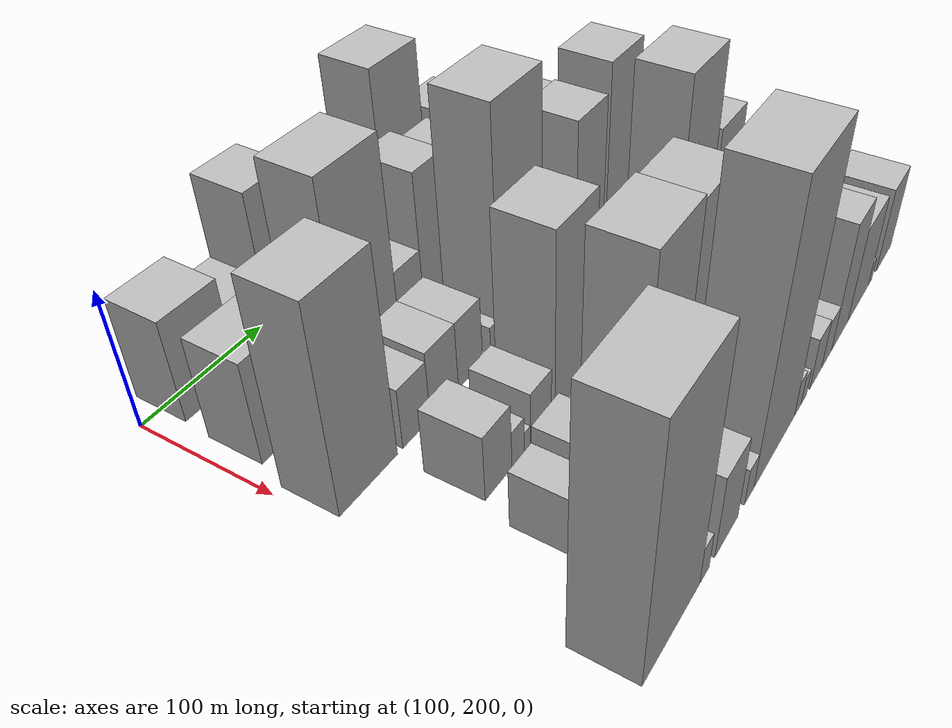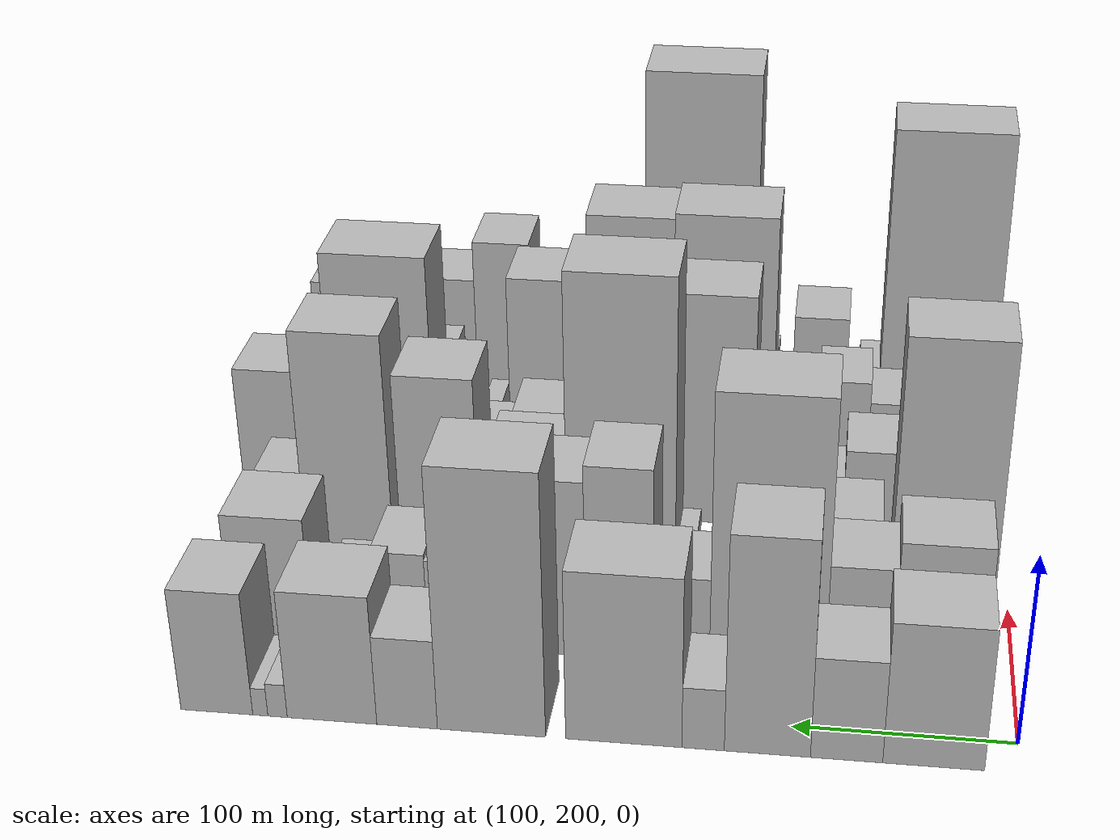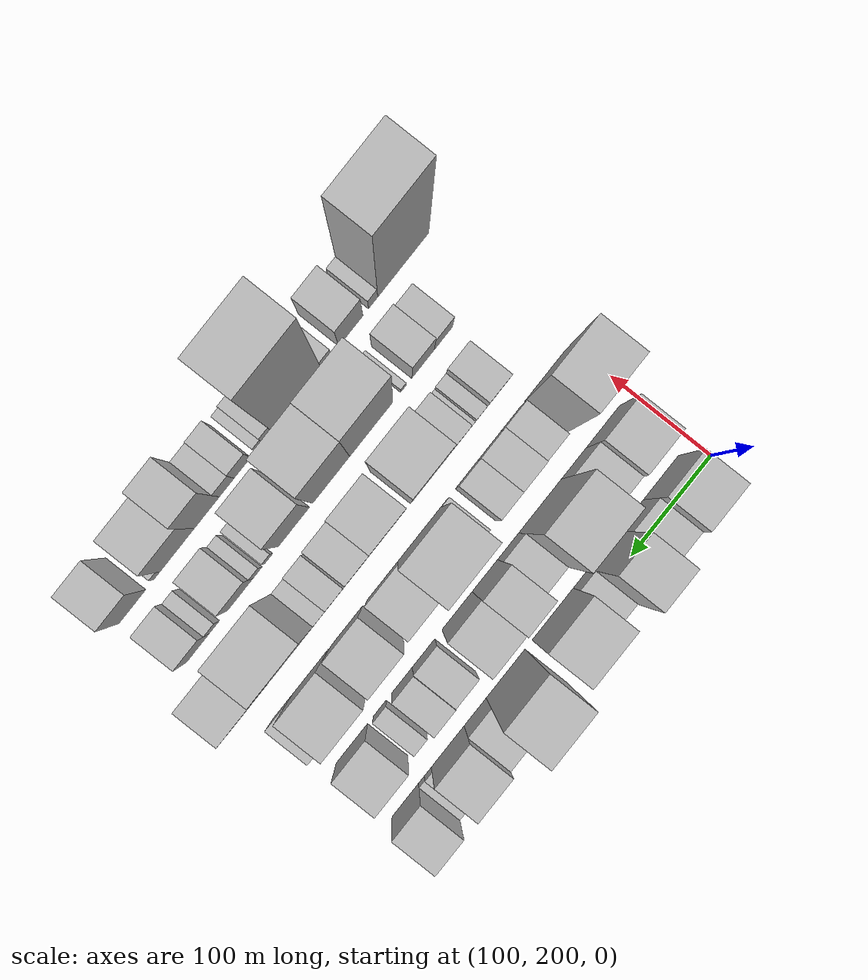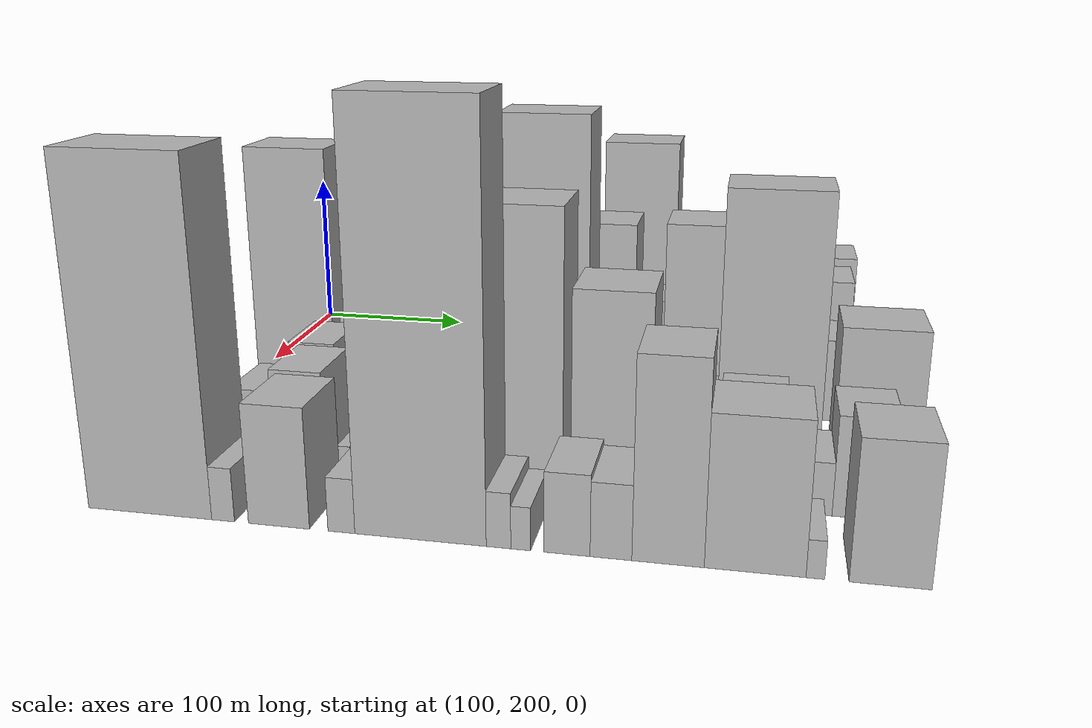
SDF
<sdf version="1.6">
 <world name="default">
  <model name="building_34">
   <static>1</static>
   <pose>100.0000 237.4932 0 0.000000 0.000000 0.000000</pose>
   <link name="link">
    <pose>0 0 37.50 0 0 0</pose>
    <collision name="collision"><geometry><box><size>40.0000 43.9191 75.0000</size></box></geometry></collision>
    <visual name="visual">
     <cast_shadows>0</cast_shadows>
     <geometry><box><size>40.0000 43.9191 75.0000</size></box></geometry>
     <material>
      <script>
       <uri>model://HANNAS_wall/materials/scripts</uri>
       <uri>model://HANNAS_wall/materials/textures</uri>
       <name>vrc/HANNAS_wall</name>
      </script>
     </material>
    </visual>
   </link>
  </model>
  <model name="building_35">
   <static>1</static>
   <pose>100.0000 275.1679 0 0.000000 0.000000 0.000000</pose>
   <link name="link">
    <pose>0 0 27.00 0 0 0</pose>
    <collision name="collision"><geometry><box><size>40.0000 31.4303 54.0000</size></box></geometry></collision>
    <visual name="visual">
     <cast_shadows>0</cast_shadows>
     <geometry><box><size>40.0000 31.4303 54.0000</size></box></geometry>
     <material>
      <script>
       <uri>model://HANNAS_wall/materials/scripts</uri>
       <uri>model://HANNAS_wall/materials/textures</uri>
       <name>vrc/HANNAS_wall</name>
      </script>
     </material>
    </visual>
   </link>
  </model>
  <model name="building_36">
   <static>1</static>
   <pose>100.0000 309.7557 0 0.000000 0.000000 0.000000</pose>
   <link name="link">
    <pose>0 0 57.00 0 0 0</pose>
    <collision name="collision"><geometry><box><size>40.0000 37.7454 114.0000</size></box></geometry></collision>
    <visual name="visual">
     <cast_shadows>0</cast_shadows>
     <geometry><box><size>40.0000 37.7454 114.0000</size></box></geometry>
     <material>
      <script>
       <uri>model://HANNAS_wall/materials/scripts</uri>
       <uri>model://HANNAS_wall/materials/textures</uri>
       <name>vrc/HANNAS_wall</name>
      </script>
     </material>
    </visual>
   </link>
  </model>
  <model name="building_37">
   <static>1</static>
   <pose>100.0000 337.9935 0 0.000000 0.000000 0.000000</pose>
   <link name="link">
    <pose>0 0 16.50 0 0 0</pose>
    <collision name="collision"><geometry><box><size>40.0000 18.7301 33.0000</size></box></geometry></collision>
    <visual name="visual">
     <cast_shadows>0</cast_shadows>
     <geometry><box><size>40.0000 18.7301 33.0000</size></box></geometry>
     <material>
      <script>
       <uri>model://HANNAS_wall/materials/scripts</uri>
       <uri>model://HANNAS_wall/materials/textures</uri>
       <name>vrc/HANNAS_wall</name>
      </script>
     </material>
    </visual>
   </link>
  </model>
  <model name="building_38">
   <static>1</static>
   <pose>100.0000 373.1869 0 0.000000 0.000000 0.000000</pose>
   <link name="link">
    <pose>0 0 45.00 0 0 0</pose>
    <collision name="collision"><geometry><box><size>40.0000 51.6567 90.0000</size></box></geometry></collision>
    <visual name="visual">
     <cast_shadows>0</cast_shadows>
     <geometry><box><size>40.0000 51.6567 90.0000</size></box></geometry>
     <material>
      <script>
       <uri>model://HANNAS_wall/materials/scripts</uri>
       <uri>model://HANNAS_wall/materials/textures</uri>
       <name>vrc/HANNAS_wall</name>
      </script>
     </material>
    </visual>
   </link>
  </model>
  <model name="building_39">
   <static>1</static>
   <pose>100.0000 432.4017 0 0.000000 0.000000 0.000000</pose>
   <link name="link">
    <pose>0 0 69.00 0 0 0</pose>
    <collision name="collision"><geometry><box><size>40.0000 48.7731 138.0000</size></box></geometry></collision>
    <visual name="visual">
     <cast_shadows>0</cast_shadows>
     <geometry><box><size>40.0000 48.7731 138.0000</size></box></geometry>
     <material>
      <script>
       <uri>model://HANNAS_wall/materials/scripts</uri>
       <uri>model://HANNAS_wall/materials/textures</uri>
       <name>vrc/HANNAS_wall</name>
      </script>
     </material>
    </visual>
   </link>
  </model>
  <model name="building_40">
   <static>1</static>
   <pose>100.0000 470.5657 0 0.000000 0.000000 0.000000</pose>
   <link name="link">
    <pose>0 0 24.00 0 0 0</pose>
    <collision name="collision"><geometry><box><size>40.0000 27.5548 48.0000</size></box></geometry></collision>
    <visual name="visual">
     <cast_shadows>0</cast_shadows>
     <geometry><box><size>40.0000 27.5548 48.0000</size></box></geometry>
     <material>
      <script>
       <uri>model://HANNAS_wall/materials/scripts</uri>
       <uri>model://HANNAS_wall/materials/textures</uri>
       <name>vrc/HANNAS_wall</name>
      </script>
     </material>
    </visual>
   </link>
  </model>
  <model name="building_41">
   <static>1</static>
   <pose>100.0000 504.8800 0 0.000000 0.000000 0.000000</pose>
   <link name="link">
    <pose>0 0 34.50 0 0 0</pose>
    <collision name="collision"><geometry><box><size>40.0000 41.0738 69.0000</size></box></geometry></collision>
    <visual name="visual">
     <cast_shadows>0</cast_shadows>
     <geometry><box><size>40.0000 41.0738 69.0000</size></box></geometry>
     <material>
      <script>
       <uri>model://HANNAS_wall/materials/scripts</uri>
       <uri>model://HANNAS_wall/materials/textures</uri>
       <name>vrc/HANNAS_wall</name>
      </script>
     </material>
    </visual>
   </link>
  </model>
  <model name="building_42">
   <static>1</static>
   <pose>100.0000 529.8861 0 0.000000 0.000000 0.000000</pose>
   <link name="link">
    <pose>0 0 9.00 0 0 0</pose>
    <collision name="collision"><geometry><box><size>40.0000 8.9385 18.0000</size></box></geometry></collision>
    <visual name="visual">
     <cast_shadows>0</cast_shadows>
     <geometry><box><size>40.0000 8.9385 18.0000</size></box></geometry>
     <material>
      <script>
       <uri>model://HANNAS_wall/materials/scripts</uri>
       <uri>model://HANNAS_wall/materials/textures</uri>
       <name>vrc/HANNAS_wall</name>
      </script>
     </material>
    </visual>
   </link>
  </model>
  <model name="building_43">
   <static>1</static>
   <pose>100.0000 537.8323 0 0.000000 0.000000 0.000000</pose>
   <link name="link">
    <pose>0 0 7.50 0 0 0</pose>
    <collision name="collision"><geometry><box><size>40.0000 6.9539 15.0000</size></box></geometry></collision>
    <visual name="visual">
     <cast_shadows>0</cast_shadows>
     <geometry><box><size>40.0000 6.9539 15.0000</size></box></geometry>
     <material>
      <script>
       <uri>model://HANNAS_wall/materials/scripts</uri>
       <uri>model://HANNAS_wall/materials/textures</uri>
       <name>vrc/HANNAS_wall</name>
      </script>
     </material>
    </visual>
   </link>
  </model>
  <model name="building_44">
   <static>1</static>
   <pose>100.0000 557.9653 0 0.000000 0.000000 0.000000</pose>
   <link name="link">
    <pose>0 0 33.00 0 0 0</pose>
    <collision name="collision"><geometry><box><size>40.0000 33.3122 66.0000</size></box></geometry></collision>
    <visual name="visual">
     <cast_shadows>0</cast_shadows>
     <geometry><box><size>40.0000 33.3122 66.0000</size></box></geometry>
     <material>
      <script>
       <uri>model://HANNAS_wall/materials/scripts</uri>
       <uri>model://HANNAS_wall/materials/textures</uri>
       <name>vrc/HANNAS_wall</name>
      </script>
     </material>
    </visual>
   </link>
  </model>
  <model name="building_94">
   <static>1</static>
   <pose>160.0000 234.5691 0 0.000000 0.000000 0.000000</pose>
   <link name="link">
    <pose>0 0 37.50 0 0 0</pose>
    <collision name="collision"><geometry><box><size>40.0000 42.1190 75.0000</size></box></geometry></collision>
    <visual name="visual">
     <cast_shadows>0</cast_shadows>
     <geometry><box><size>40.0000 42.1190 75.0000</size></box></geometry>
     <material>
      <script>
       <uri>model://HANNAS_wall/materials/scripts</uri>
       <uri>model://HANNAS_wall/materials/textures</uri>
       <name>vrc/HANNAS_wall</name>
      </script>
     </material>
    </visual>
   </link>
  </model>
  <model name="building_95">
   <static>1</static>
   <pose>160.0000 271.0334 0 0.000000 0.000000 0.000000</pose>
   <link name="link">
    <pose>0 0 30.00 0 0 0</pose>
    <collision name="collision"><geometry><box><size>40.0000 30.8096 60.0000</size></box></geometry></collision>
    <visual name="visual">
     <cast_shadows>0</cast_shadows>
     <geometry><box><size>40.0000 30.8096 60.0000</size></box></geometry>
     <material>
      <script>
       <uri>model://HANNAS_wall/materials/scripts</uri>
       <uri>model://HANNAS_wall/materials/textures</uri>
       <name>vrc/HANNAS_wall</name>
      </script>
     </material>
    </visual>
   </link>
  </model>
  <model name="building_96">
   <static>1</static>
   <pose>160.0000 313.3456 0 0.000000 0.000000 0.000000</pose>
   <link name="link">
    <pose>0 0 73.50 0 0 0</pose>
    <collision name="collision"><geometry><box><size>40.0000 53.8146 147.0000</size></box></geometry></collision>
    <visual name="visual">
     <cast_shadows>0</cast_shadows>
     <geometry><box><size>40.0000 53.8146 147.0000</size></box></geometry>
     <material>
      <script>
       <uri>model://HANNAS_wall/materials/scripts</uri>
       <uri>model://HANNAS_wall/materials/textures</uri>
       <name>vrc/HANNAS_wall</name>
      </script>
     </material>
    </visual>
   </link>
  </model>
  <model name="building_97">
   <static>1</static>
   <pose>160.0000 353.4781 0 0.000000 0.000000 0.000000</pose>
   <link name="link">
    <pose>0 0 24.00 0 0 0</pose>
    <collision name="collision"><geometry><box><size>40.0000 26.4505 48.0000</size></box></geometry></collision>
    <visual name="visual">
     <cast_shadows>0</cast_shadows>
     <geometry><box><size>40.0000 26.4505 48.0000</size></box></geometry>
     <material>
      <script>
       <uri>model://HANNAS_wall/materials/scripts</uri>
       <uri>model://HANNAS_wall/materials/textures</uri>
       <name>vrc/HANNAS_wall</name>
      </script>
     </material>
    </visual>
   </link>
  </model>
  <model name="building_98">
   <static>1</static>
   <pose>160.0000 382.6065 0 0.000000 0.000000 0.000000</pose>
   <link name="link">
    <pose>0 0 52.50 0 0 0</pose>
    <collision name="collision"><geometry><box><size>40.0000 31.8062 105.0000</size></box></geometry></collision>
    <visual name="visual">
     <cast_shadows>0</cast_shadows>
     <geometry><box><size>40.0000 31.8062 105.0000</size></box></geometry>
     <material>
      <script>
       <uri>model://HANNAS_wall/materials/scripts</uri>
       <uri>model://HANNAS_wall/materials/textures</uri>
       <name>vrc/HANNAS_wall</name>
      </script>
     </material>
    </visual>
   </link>
  </model>
  <model name="building_99">
   <static>1</static>
   <pose>160.0000 417.4485 0 0.000000 0.000000 0.000000</pose>
   <link name="link">
    <pose>0 0 48.00 0 0 0</pose>
    <collision name="collision"><geometry><box><size>40.0000 37.8778 96.0000</size></box></geometry></collision>
    <visual name="visual">
     <cast_shadows>0</cast_shadows>
     <geometry><box><size>40.0000 37.8778 96.0000</size></box></geometry>
     <material>
      <script>
       <uri>model://HANNAS_wall/materials/scripts</uri>
       <uri>model://HANNAS_wall/materials/textures</uri>
       <name>vrc/HANNAS_wall</name>
      </script>
     </material>
    </visual>
   </link>
  </model>
  <model name="building_100">
   <static>1</static>
   <pose>160.0000 459.3921 0 0.000000 0.000000 0.000000</pose>
   <link name="link">
    <pose>0 0 24.00 0 0 0</pose>
    <collision name="collision"><geometry><box><size>40.0000 28.0094 48.0000</size></box></geometry></collision>
    <visual name="visual">
     <cast_shadows>0</cast_shadows>
     <geometry><box><size>40.0000 28.0094 48.0000</size></box></geometry>
     <material>
      <script>
       <uri>model://HANNAS_wall/materials/scripts</uri>
       <uri>model://HANNAS_wall/materials/textures</uri>
       <name>vrc/HANNAS_wall</name>
      </script>
     </material>
    </visual>
   </link>
  </model>
  <model name="building_101">
   <static>1</static>
   <pose>160.0000 486.3158 0 0.000000 0.000000 0.000000</pose>
   <link name="link">
    <pose>0 0 25.50 0 0 0</pose>
    <collision name="collision"><geometry><box><size>40.0000 25.8382 51.0000</size></box></geometry></collision>
    <visual name="visual">
     <cast_shadows>0</cast_shadows>
     <geometry><box><size>40.0000 25.8382 51.0000</size></box></geometry>
     <material>
      <script>
       <uri>model://HANNAS_wall/materials/scripts</uri>
       <uri>model://HANNAS_wall/materials/textures</uri>
       <name>vrc/HANNAS_wall</name>
      </script>
     </material>
    </visual>
   </link>
  </model>
  <model name="building_102">
   <static>1</static>
   <pose>160.0000 514.3833 0 0.000000 0.000000 0.000000</pose>
   <link name="link">
    <pose>0 0 15.00 0 0 0</pose>
    <collision name="collision"><geometry><box><size>40.0000 16.2968 30.0000</size></box></geometry></collision>
    <visual name="visual">
     <cast_shadows>0</cast_shadows>
     <geometry><box><size>40.0000 16.2968 30.0000</size></box></geometry>
     <material>
      <script>
       <uri>model://HANNAS_wall/materials/scripts</uri>
       <uri>model://HANNAS_wall/materials/textures</uri>
       <name>vrc/HANNAS_wall</name>
      </script>
     </material>
    </visual>
   </link>
  </model>
  <model name="building_103">
   <static>1</static>
   <pose>160.0000 549.2202 0 0.000000 0.000000 0.000000</pose>
   <link name="link">
    <pose>0 0 33.00 0 0 0</pose>
    <collision name="collision"><geometry><box><size>40.0000 39.3769 66.0000</size></box></geometry></collision>
    <visual name="visual">
     <cast_shadows>0</cast_shadows>
     <geometry><box><size>40.0000 39.3769 66.0000</size></box></geometry>
     <material>
      <script>
       <uri>model://HANNAS_wall/materials/scripts</uri>
       <uri>model://HANNAS_wall/materials/textures</uri>
       <name>vrc/HANNAS_wall</name>
      </script>
     </material>
    </visual>
   </link>
  </model>
  <model name="building_150">
   <static>1</static>
   <pose>220.0000 231.9948 0 0.000000 0.000000 0.000000</pose>
   <link name="link">
    <pose>0 0 73.50 0 0 0</pose>
    <collision name="collision"><geometry><box><size>40.0000 50.7043 147.0000</size></box></geometry></collision>
    <visual name="visual">
     <cast_shadows>0</cast_shadows>
     <geometry><box><size>40.0000 50.7043 147.0000</size></box></geometry>
     <material>
      <script>
       <uri>model://HANNAS_wall/materials/scripts</uri>
       <uri>model://HANNAS_wall/materials/textures</uri>
       <name>vrc/HANNAS_wall</name>
      </script>
     </material>
    </visual>
   </link>
  </model>
  <model name="building_151">
   <static>1</static>
   <pose>220.0000 275.5493 0 0.000000 0.000000 0.000000</pose>
   <link name="link">
    <pose>0 0 22.50 0 0 0</pose>
    <collision name="collision"><geometry><box><size>40.0000 26.4049 45.0000</size></box></geometry></collision>
    <visual name="visual">
     <cast_shadows>0</cast_shadows>
     <geometry><box><size>40.0000 26.4049 45.0000</size></box></geometry>
     <material>
      <script>
       <uri>model://HANNAS_wall/materials/scripts</uri>
       <uri>model://HANNAS_wall/materials/textures</uri>
       <name>vrc/HANNAS_wall</name>
      </script>
     </material>
    </visual>
   </link>
  </model>
  <model name="building_152">
   <static>1</static>
   <pose>220.0000 303.2090 0 0.000000 0.000000 0.000000</pose>
   <link name="link">
    <pose>0 0 25.50 0 0 0</pose>
    <collision name="collision"><geometry><box><size>40.0000 28.9145 51.0000</size></box></geometry></collision>
    <visual name="visual">
     <cast_shadows>0</cast_shadows>
     <geometry><box><size>40.0000 28.9145 51.0000</size></box></geometry>
     <material>
      <script>
       <uri>model://HANNAS_wall/materials/scripts</uri>
       <uri>model://HANNAS_wall/materials/textures</uri>
       <name>vrc/HANNAS_wall</name>
      </script>
     </material>
    </visual>
   </link>
  </model>
  <model name="building_153">
   <static>1</static>
   <pose>220.0000 330.7737 0 0.000000 0.000000 0.000000</pose>
   <link name="link">
    <pose>0 0 25.50 0 0 0</pose>
    <collision name="collision"><geometry><box><size>40.0000 26.2148 51.0000</size></box></geometry></collision>
    <visual name="visual">
     <cast_shadows>0</cast_shadows>
     <geometry><box><size>40.0000 26.2148 51.0000</size></box></geometry>
     <material>
      <script>
       <uri>model://HANNAS_wall/materials/scripts</uri>
       <uri>model://HANNAS_wall/materials/textures</uri>
       <name>vrc/HANNAS_wall</name>
      </script>
     </material>
    </visual>
   </link>
  </model>
  <model name="building_154">
   <static>1</static>
   <pose>220.0000 357.5313 0 0.000000 0.000000 0.000000</pose>
   <link name="link">
    <pose>0 0 10.50 0 0 0</pose>
    <collision name="collision"><geometry><box><size>40.0000 9.3004 21.0000</size></box></geometry></collision>
    <visual name="visual">
     <cast_shadows>0</cast_shadows>
     <geometry><box><size>40.0000 9.3004 21.0000</size></box></geometry>
     <material>
      <script>
       <uri>model://HANNAS_wall/materials/scripts</uri>
       <uri>model://HANNAS_wall/materials/textures</uri>
       <name>vrc/HANNAS_wall</name>
      </script>
     </material>
    </visual>
   </link>
  </model>
  <model name="building_155">
   <static>1</static>
   <pose>220.0000 388.9571 0 0.000000 0.000000 0.000000</pose>
   <link name="link">
    <pose>0 0 85.50 0 0 0</pose>
    <collision name="collision"><geometry><box><size>40.0000 53.5513 171.0000</size></box></geometry></collision>
    <visual name="visual">
     <cast_shadows>0</cast_shadows>
     <geometry><box><size>40.0000 53.5513 171.0000</size></box></geometry>
     <material>
      <script>
       <uri>model://HANNAS_wall/materials/scripts</uri>
       <uri>model://HANNAS_wall/materials/textures</uri>
       <name>vrc/HANNAS_wall</name>
      </script>
     </material>
    </visual>
   </link>
  </model>
  <model name="building_156">
   <static>1</static>
   <pose>220.0000 435.1000 0 0.000000 0.000000 0.000000</pose>
   <link name="link">
    <pose>0 0 36.00 0 0 0</pose>
    <collision name="collision"><geometry><box><size>40.0000 38.7345 72.0000</size></box></geometry></collision>
    <visual name="visual">
     <cast_shadows>0</cast_shadows>
     <geometry><box><size>40.0000 38.7345 72.0000</size></box></geometry>
     <material>
      <script>
       <uri>model://HANNAS_wall/materials/scripts</uri>
       <uri>model://HANNAS_wall/materials/textures</uri>
       <name>vrc/HANNAS_wall</name>
      </script>
     </material>
    </visual>
   </link>
  </model>
  <model name="building_157">
   <static>1</static>
   <pose>220.0000 479.2156 0 0.000000 0.000000 0.000000</pose>
   <link name="link">
    <pose>0 0 55.50 0 0 0</pose>
    <collision name="collision"><geometry><box><size>40.0000 39.4967 111.0000</size></box></geometry></collision>
    <visual name="visual">
     <cast_shadows>0</cast_shadows>
     <geometry><box><size>40.0000 39.4967 111.0000</size></box></geometry>
     <material>
      <script>
       <uri>model://HANNAS_wall/materials/scripts</uri>
       <uri>model://HANNAS_wall/materials/textures</uri>
       <name>vrc/HANNAS_wall</name>
      </script>
     </material>
    </visual>
   </link>
  </model>
  <model name="building_158">
   <static>1</static>
   <pose>220.0000 525.3348 0 0.000000 0.000000 0.000000</pose>
   <link name="link">
    <pose>0 0 66.00 0 0 0</pose>
    <collision name="collision"><geometry><box><size>40.0000 44.7418 132.0000</size></box></geometry></collision>
    <visual name="visual">
     <cast_shadows>0</cast_shadows>
     <geometry><box><size>40.0000 44.7418 132.0000</size></box></geometry>
     <material>
      <script>
       <uri>model://HANNAS_wall/materials/scripts</uri>
       <uri>model://HANNAS_wall/materials/textures</uri>
       <name>vrc/HANNAS_wall</name>
      </script>
     </material>
    </visual>
   </link>
  </model>
  <model name="building_159">
   <static>1</static>
   <pose>220.0000 560.5594 0 0.000000 0.000000 0.000000</pose>
   <link name="link">
    <pose>0 0 24.00 0 0 0</pose>
    <collision name="collision"><geometry><box><size>40.0000 25.7073 48.0000</size></box></geometry></collision>
    <visual name="visual">
     <cast_shadows>0</cast_shadows>
     <geometry><box><size>40.0000 25.7073 48.0000</size></box></geometry>
     <material>
      <script>
       <uri>model://HANNAS_wall/materials/scripts</uri>
       <uri>model://HANNAS_wall/materials/textures</uri>
       <name>vrc/HANNAS_wall</name>
      </script>
     </material>
    </visual>
   </link>
  </model>
  <model name="building_200">
   <static>1</static>
   <pose>280.0000 268.0484 0 0.000000 0.000000 0.000000</pose>
   <link name="link">
    <pose>0 0 24.00 0 0 0</pose>
    <collision name="collision"><geometry><box><size>40.0000 26.8326 48.0000</size></box></geometry></collision>
    <visual name="visual">
     <cast_shadows>0</cast_shadows>
     <geometry><box><size>40.0000 26.8326 48.0000</size></box></geometry>
     <material>
      <script>
       <uri>model://HANNAS_wall/materials/scripts</uri>
       <uri>model://HANNAS_wall/materials/textures</uri>
       <name>vrc/HANNAS_wall</name>
      </script>
     </material>
    </visual>
   </link>
  </model>
  <model name="building_201">
   <static>1</static>
   <pose>280.0000 288.0906 0 0.000000 0.000000 0.000000</pose>
   <link name="link">
    <pose>0 0 13.50 0 0 0</pose>
    <collision name="collision"><geometry><box><size>40.0000 13.2517 27.0000</size></box></geometry></collision>
    <visual name="visual">
     <cast_shadows>0</cast_shadows>
     <geometry><box><size>40.0000 13.2517 27.0000</size></box></geometry>
     <material>
      <script>
       <uri>model://HANNAS_wall/materials/scripts</uri>
       <uri>model://HANNAS_wall/materials/textures</uri>
       <name>vrc/HANNAS_wall</name>
      </script>
     </material>
    </visual>
   </link>
  </model>
  <model name="building_202">
   <static>1</static>
   <pose>280.0000 298.0495 0 0.000000 0.000000 0.000000</pose>
   <link name="link">
    <pose>0 0 7.50 0 0 0</pose>
    <collision name="collision"><geometry><box><size>40.0000 6.6662 15.0000</size></box></geometry></collision>
    <visual name="visual">
     <cast_shadows>0</cast_shadows>
     <geometry><box><size>40.0000 6.6662 15.0000</size></box></geometry>
     <material>
      <script>
       <uri>model://HANNAS_wall/materials/scripts</uri>
       <uri>model://HANNAS_wall/materials/textures</uri>
       <name>vrc/HANNAS_wall</name>
      </script>
     </material>
    </visual>
   </link>
  </model>
  <model name="building_203">
   <static>1</static>
   <pose>280.0000 312.9044 0 0.000000 0.000000 0.000000</pose>
   <link name="link">
    <pose>0 0 19.50 0 0 0</pose>
    <collision name="collision"><geometry><box><size>40.0000 23.0436 39.0000</size></box></geometry></collision>
    <visual name="visual">
     <cast_shadows>0</cast_shadows>
     <geometry><box><size>40.0000 23.0436 39.0000</size></box></geometry>
     <material>
      <script>
       <uri>model://HANNAS_wall/materials/scripts</uri>
       <uri>model://HANNAS_wall/materials/textures</uri>
       <name>vrc/HANNAS_wall</name>
      </script>
     </material>
    </visual>
   </link>
  </model>
  <model name="building_204">
   <static>1</static>
   <pose>280.0000 351.5070 0 0.000000 0.000000 0.000000</pose>
   <link name="link">
    <pose>0 0 66.00 0 0 0</pose>
    <collision name="collision"><geometry><box><size>40.0000 46.1616 132.0000</size></box></geometry></collision>
    <visual name="visual">
     <cast_shadows>0</cast_shadows>
     <geometry><box><size>40.0000 46.1616 132.0000</size></box></geometry>
     <material>
      <script>
       <uri>model://HANNAS_wall/materials/scripts</uri>
       <uri>model://HANNAS_wall/materials/textures</uri>
       <name>vrc/HANNAS_wall</name>
      </script>
     </material>
    </visual>
   </link>
  </model>
  <model name="building_205">
   <static>1</static>
   <pose>280.0000 402.1672 0 0.000000 0.000000 0.000000</pose>
   <link name="link">
    <pose>0 0 36.00 0 0 0</pose>
    <collision name="collision"><geometry><box><size>40.0000 43.1589 72.0000</size></box></geometry></collision>
    <visual name="visual">
     <cast_shadows>0</cast_shadows>
     <geometry><box><size>40.0000 43.1589 72.0000</size></box></geometry>
     <material>
      <script>
       <uri>model://HANNAS_wall/materials/scripts</uri>
       <uri>model://HANNAS_wall/materials/textures</uri>
       <name>vrc/HANNAS_wall</name>
      </script>
     </material>
    </visual>
   </link>
  </model>
  <model name="building_206">
   <static>1</static>
   <pose>280.0000 438.3477 0 0.000000 0.000000 0.000000</pose>
   <link name="link">
    <pose>0 0 28.50 0 0 0</pose>
    <collision name="collision"><geometry><box><size>40.0000 29.2020 57.0000</size></box></geometry></collision>
    <visual name="visual">
     <cast_shadows>0</cast_shadows>
     <geometry><box><size>40.0000 29.2020 57.0000</size></box></geometry>
     <material>
      <script>
       <uri>model://HANNAS_wall/materials/scripts</uri>
       <uri>model://HANNAS_wall/materials/textures</uri>
       <name>vrc/HANNAS_wall</name>
      </script>
     </material>
    </visual>
   </link>
  </model>
  <model name="building_207">
   <static>1</static>
   <pose>280.0000 466.8706 0 0.000000 0.000000 0.000000</pose>
   <link name="link">
    <pose>0 0 21.00 0 0 0</pose>
    <collision name="collision"><geometry><box><size>40.0000 21.8439 42.0000</size></box></geometry></collision>
    <visual name="visual">
     <cast_shadows>0</cast_shadows>
     <geometry><box><size>40.0000 21.8439 42.0000</size></box></geometry>
     <material>
      <script>
       <uri>model://HANNAS_wall/materials/scripts</uri>
       <uri>model://HANNAS_wall/materials/textures</uri>
       <name>vrc/HANNAS_wall</name>
      </script>
     </material>
    </visual>
   </link>
  </model>
  <model name="building_208">
   <static>1</static>
   <pose>280.0000 485.6192 0 0.000000 0.000000 0.000000</pose>
   <link name="link">
    <pose>0 0 15.00 0 0 0</pose>
    <collision name="collision"><geometry><box><size>40.0000 15.6533 30.0000</size></box></geometry></collision>
    <visual name="visual">
     <cast_shadows>0</cast_shadows>
     <geometry><box><size>40.0000 15.6533 30.0000</size></box></geometry>
     <material>
      <script>
       <uri>model://HANNAS_wall/materials/scripts</uri>
       <uri>model://HANNAS_wall/materials/textures</uri>
       <name>vrc/HANNAS_wall</name>
      </script>
     </material>
    </visual>
   </link>
  </model>
  <model name="building_209">
   <static>1</static>
   <pose>280.0000 520.3911 0 0.000000 0.000000 0.000000</pose>
   <link name="link">
    <pose>0 0 72.00 0 0 0</pose>
    <collision name="collision"><geometry><box><size>40.0000 53.8904 144.0000</size></box></geometry></collision>
    <visual name="visual">
     <cast_shadows>0</cast_shadows>
     <geometry><box><size>40.0000 53.8904 144.0000</size></box></geometry>
     <material>
      <script>
       <uri>model://HANNAS_wall/materials/scripts</uri>
       <uri>model://HANNAS_wall/materials/textures</uri>
       <name>vrc/HANNAS_wall</name>
      </script>
     </material>
    </visual>
   </link>
  </model>
  <model name="building_210">
   <static>1</static>
   <pose>280.0000 576.0789 0 0.000000 0.000000 0.000000</pose>
   <link name="link">
    <pose>0 0 37.50 0 0 0</pose>
    <collision name="collision"><geometry><box><size>40.0000 43.4853 75.0000</size></box></geometry></collision>
    <visual name="visual">
     <cast_shadows>0</cast_shadows>
     <geometry><box><size>40.0000 43.4853 75.0000</size></box></geometry>
     <material>
      <script>
       <uri>model://HANNAS_wall/materials/scripts</uri>
       <uri>model://HANNAS_wall/materials/textures</uri>
       <name>vrc/HANNAS_wall</name>
      </script>
     </material>
    </visual>
   </link>
  </model>
  <model name="building_257">
   <static>1</static>
   <pose>340.0000 258.3698 0 0.000000 0.000000 0.000000</pose>
   <link name="link">
    <pose>0 0 21.00 0 0 0</pose>
    <collision name="collision"><geometry><box><size>40.0000 22.6812 42.0000</size></box></geometry></collision>
    <visual name="visual">
     <cast_shadows>0</cast_shadows>
     <geometry><box><size>40.0000 22.6812 42.0000</size></box></geometry>
     <material>
      <script>
       <uri>model://HANNAS_wall/materials/scripts</uri>
       <uri>model://HANNAS_wall/materials/textures</uri>
       <name>vrc/HANNAS_wall</name>
      </script>
     </material>
    </visual>
   </link>
  </model>
  <model name="building_258">
   <static>1</static>
   <pose>340.0000 283.6324 0 0.000000 0.000000 0.000000</pose>
   <link name="link">
    <pose>0 0 27.00 0 0 0</pose>
    <collision name="collision"><geometry><box><size>40.0000 27.8440 54.0000</size></box></geometry></collision>
    <visual name="visual">
     <cast_shadows>0</cast_shadows>
     <geometry><box><size>40.0000 27.8440 54.0000</size></box></geometry>
     <material>
      <script>
       <uri>model://HANNAS_wall/materials/scripts</uri>
       <uri>model://HANNAS_wall/materials/textures</uri>
       <name>vrc/HANNAS_wall</name>
      </script>
     </material>
    </visual>
   </link>
  </model>
  <model name="building_259">
   <static>1</static>
   <pose>340.0000 308.0148 0 0.000000 0.000000 0.000000</pose>
   <link name="link">
    <pose>0 0 7.50 0 0 0</pose>
    <collision name="collision"><geometry><box><size>40.0000 6.9209 15.0000</size></box></geometry></collision>
    <visual name="visual">
     <cast_shadows>0</cast_shadows>
     <geometry><box><size>40.0000 6.9209 15.0000</size></box></geometry>
     <material>
      <script>
       <uri>model://HANNAS_wall/materials/scripts</uri>
       <uri>model://HANNAS_wall/materials/textures</uri>
       <name>vrc/HANNAS_wall</name>
      </script>
     </material>
    </visual>
   </link>
  </model>
  <model name="building_260">
   <static>1</static>
   <pose>340.0000 348.3556 0 0.000000 0.000000 0.000000</pose>
   <link name="link">
    <pose>0 0 73.50 0 0 0</pose>
    <collision name="collision"><geometry><box><size>40.0000 53.7606 147.0000</size></box></geometry></collision>
    <visual name="visual">
     <cast_shadows>0</cast_shadows>
     <geometry><box><size>40.0000 53.7606 147.0000</size></box></geometry>
     <material>
      <script>
       <uri>model://HANNAS_wall/materials/scripts</uri>
       <uri>model://HANNAS_wall/materials/textures</uri>
       <name>vrc/HANNAS_wall</name>
      </script>
     </material>
    </visual>
   </link>
  </model>
  <model name="building_261">
   <static>1</static>
   <pose>340.0000 398.3755 0 0.000000 0.000000 0.000000</pose>
   <link name="link">
    <pose>0 0 72.00 0 0 0</pose>
    <collision name="collision"><geometry><box><size>40.0000 46.2793 144.0000</size></box></geometry></collision>
    <visual name="visual">
     <cast_shadows>0</cast_shadows>
     <geometry><box><size>40.0000 46.2793 144.0000</size></box></geometry>
     <material>
      <script>
       <uri>model://HANNAS_wall/materials/scripts</uri>
       <uri>model://HANNAS_wall/materials/textures</uri>
       <name>vrc/HANNAS_wall</name>
      </script>
     </material>
    </visual>
   </link>
  </model>
  <model name="building_262">
   <static>1</static>
   <pose>340.0000 445.0450 0 0.000000 0.000000 0.000000</pose>
   <link name="link">
    <pose>0 0 52.50 0 0 0</pose>
    <collision name="collision"><geometry><box><size>40.0000 39.0597 105.0000</size></box></geometry></collision>
    <visual name="visual">
     <cast_shadows>0</cast_shadows>
     <geometry><box><size>40.0000 39.0597 105.0000</size></box></geometry>
     <material>
      <script>
       <uri>model://HANNAS_wall/materials/scripts</uri>
       <uri>model://HANNAS_wall/materials/textures</uri>
       <name>vrc/HANNAS_wall</name>
      </script>
     </material>
    </visual>
   </link>
  </model>
  <model name="building_263">
   <static>1</static>
   <pose>340.0000 476.6960 0 0.000000 0.000000 0.000000</pose>
   <link name="link">
    <pose>0 0 10.50 0 0 0</pose>
    <collision name="collision"><geometry><box><size>40.0000 10.2423 21.0000</size></box></geometry></collision>
    <visual name="visual">
     <cast_shadows>0</cast_shadows>
     <geometry><box><size>40.0000 10.2423 21.0000</size></box></geometry>
     <material>
      <script>
       <uri>model://HANNAS_wall/materials/scripts</uri>
       <uri>model://HANNAS_wall/materials/textures</uri>
       <name>vrc/HANNAS_wall</name>
      </script>
     </material>
    </visual>
   </link>
  </model>
  <model name="building_264">
   <static>1</static>
   <pose>340.0000 490.5829 0 0.000000 0.000000 0.000000</pose>
   <link name="link">
    <pose>0 0 13.50 0 0 0</pose>
    <collision name="collision"><geometry><box><size>40.0000 11.5313 27.0000</size></box></geometry></collision>
    <visual name="visual">
     <cast_shadows>0</cast_shadows>
     <geometry><box><size>40.0000 11.5313 27.0000</size></box></geometry>
     <material>
      <script>
       <uri>model://HANNAS_wall/materials/scripts</uri>
       <uri>model://HANNAS_wall/materials/textures</uri>
       <name>vrc/HANNAS_wall</name>
      </script>
     </material>
    </visual>
   </link>
  </model>
  <model name="building_265">
   <static>1</static>
   <pose>340.0000 512.3080 0 0.000000 0.000000 0.000000</pose>
   <link name="link">
    <pose>0 0 27.00 0 0 0</pose>
    <collision name="collision"><geometry><box><size>40.0000 31.9189 54.0000</size></box></geometry></collision>
    <visual name="visual">
     <cast_shadows>0</cast_shadows>
     <geometry><box><size>40.0000 31.9189 54.0000</size></box></geometry>
     <material>
      <script>
       <uri>model://HANNAS_wall/materials/scripts</uri>
       <uri>model://HANNAS_wall/materials/textures</uri>
       <name>vrc/HANNAS_wall</name>
      </script>
     </material>
    </visual>
   </link>
  </model>
  <model name="building_266">
   <static>1</static>
   <pose>340.0000 544.6069 0 0.000000 0.000000 0.000000</pose>
   <link name="link">
    <pose>0 0 13.50 0 0 0</pose>
    <collision name="collision"><geometry><box><size>40.0000 12.6788 27.0000</size></box></geometry></collision>
    <visual name="visual">
     <cast_shadows>0</cast_shadows>
     <geometry><box><size>40.0000 12.6788 27.0000</size></box></geometry>
     <material>
      <script>
       <uri>model://HANNAS_wall/materials/scripts</uri>
       <uri>model://HANNAS_wall/materials/textures</uri>
       <name>vrc/HANNAS_wall</name>
      </script>
     </material>
    </visual>
   </link>
  </model>
  <model name="building_267">
   <static>1</static>
   <pose>340.0000 565.3967 0 0.000000 0.000000 0.000000</pose>
   <link name="link">
    <pose>0 0 25.50 0 0 0</pose>
    <collision name="collision"><geometry><box><size>40.0000 28.9008 51.0000</size></box></geometry></collision>
    <visual name="visual">
     <cast_shadows>0</cast_shadows>
     <geometry><box><size>40.0000 28.9008 51.0000</size></box></geometry>
     <material>
      <script>
       <uri>model://HANNAS_wall/materials/scripts</uri>
       <uri>model://HANNAS_wall/materials/textures</uri>
       <name>vrc/HANNAS_wall</name>
      </script>
     </material>
    </visual>
   </link>
  </model>
  <model name="building_309">
   <static>1</static>
   <pose>400.0000 232.6776 0 0.000000 0.000000 0.000000</pose>
   <link name="link">
    <pose>0 0 87.00 0 0 0</pose>
    <collision name="collision"><geometry><box><size>40.0000 63.6737 174.0000</size></box></geometry></collision>
    <visual name="visual">
     <cast_shadows>0</cast_shadows>
     <geometry><box><size>40.0000 63.6737 174.0000</size></box></geometry>
     <material>
      <script>
       <uri>model://HANNAS_wall/materials/scripts</uri>
       <uri>model://HANNAS_wall/materials/textures</uri>
       <name>vrc/HANNAS_wall</name>
      </script>
     </material>
    </visual>
   </link>
  </model>
  <model name="building_310">
   <static>1</static>
   <pose>400.0000 270.2621 0 0.000000 0.000000 0.000000</pose>
   <link name="link">
    <pose>0 0 13.50 0 0 0</pose>
    <collision name="collision"><geometry><box><size>40.0000 11.4951 27.0000</size></box></geometry></collision>
    <visual name="visual">
     <cast_shadows>0</cast_shadows>
     <geometry><box><size>40.0000 11.4951 27.0000</size></box></geometry>
     <material>
      <script>
       <uri>model://HANNAS_wall/materials/scripts</uri>
       <uri>model://HANNAS_wall/materials/textures</uri>
       <name>vrc/HANNAS_wall</name>
      </script>
     </material>
    </visual>
   </link>
  </model>
  <model name="building_311">
   <static>1</static>
   <pose>400.0000 298.1245 0 0.000000 0.000000 0.000000</pose>
   <link name="link">
    <pose>0 0 30.00 0 0 0</pose>
    <collision name="collision"><geometry><box><size>40.0000 30.2296 60.0000</size></box></geometry></collision>
    <visual name="visual">
     <cast_shadows>0</cast_shadows>
     <geometry><box><size>40.0000 30.2296 60.0000</size></box></geometry>
     <material>
      <script>
       <uri>model://HANNAS_wall/materials/scripts</uri>
       <uri>model://HANNAS_wall/materials/textures</uri>
       <name>vrc/HANNAS_wall</name>
      </script>
     </material>
    </visual>
   </link>
  </model>
  <model name="building_312">
   <static>1</static>
   <pose>400.0000 328.7479 0 0.000000 0.000000 0.000000</pose>
   <link name="link">
    <pose>0 0 13.50 0 0 0</pose>
    <collision name="collision"><geometry><box><size>40.0000 13.0172 27.0000</size></box></geometry></collision>
    <visual name="visual">
     <cast_shadows>0</cast_shadows>
     <geometry><box><size>40.0000 13.0172 27.0000</size></box></geometry>
     <material>
      <script>
       <uri>model://HANNAS_wall/materials/scripts</uri>
       <uri>model://HANNAS_wall/materials/textures</uri>
       <name>vrc/HANNAS_wall</name>
      </script>
     </material>
    </visual>
   </link>
  </model>
  <model name="building_313">
   <static>1</static>
   <pose>400.0000 366.2492 0 0.000000 0.000000 0.000000</pose>
   <link name="link">
    <pose>0 0 100.50 0 0 0</pose>
    <collision name="collision"><geometry><box><size>40.0000 61.9854 201.0000</size></box></geometry></collision>
    <visual name="visual">
     <cast_shadows>0</cast_shadows>
     <geometry><box><size>40.0000 61.9854 201.0000</size></box></geometry>
     <material>
      <script>
       <uri>model://HANNAS_wall/materials/scripts</uri>
       <uri>model://HANNAS_wall/materials/textures</uri>
       <name>vrc/HANNAS_wall</name>
      </script>
     </material>
    </visual>
   </link>
  </model>
  <model name="building_314">
   <static>1</static>
   <pose>400.0000 402.8837 0 0.000000 0.000000 0.000000</pose>
   <link name="link">
    <pose>0 0 13.50 0 0 0</pose>
    <collision name="collision"><geometry><box><size>40.0000 11.2837 27.0000</size></box></geometry></collision>
    <visual name="visual">
     <cast_shadows>0</cast_shadows>
     <geometry><box><size>40.0000 11.2837 27.0000</size></box></geometry>
     <material>
      <script>
       <uri>model://HANNAS_wall/materials/scripts</uri>
       <uri>model://HANNAS_wall/materials/textures</uri>
       <name>vrc/HANNAS_wall</name>
      </script>
     </material>
    </visual>
   </link>
  </model>
  <model name="building_315">
   <static>1</static>
   <pose>400.0000 413.0603 0 0.000000 0.000000 0.000000</pose>
   <link name="link">
    <pose>0 0 10.50 0 0 0</pose>
    <collision name="collision"><geometry><box><size>40.0000 9.0694 21.0000</size></box></geometry></collision>
    <visual name="visual">
     <cast_shadows>0</cast_shadows>
     <geometry><box><size>40.0000 9.0694 21.0000</size></box></geometry>
     <material>
      <script>
       <uri>model://HANNAS_wall/materials/scripts</uri>
       <uri>model://HANNAS_wall/materials/textures</uri>
       <name>vrc/HANNAS_wall</name>
      </script>
     </material>
    </visual>
   </link>
  </model>
  <model name="building_316">
   <static>1</static>
   <pose>400.0000 433.9383 0 0.000000 0.000000 0.000000</pose>
   <link name="link">
    <pose>0 0 19.50 0 0 0</pose>
    <collision name="collision"><geometry><box><size>40.0000 20.6868 39.0000</size></box></geometry></collision>
    <visual name="visual">
     <cast_shadows>0</cast_shadows>
     <geometry><box><size>40.0000 20.6868 39.0000</size></box></geometry>
     <material>
      <script>
       <uri>model://HANNAS_wall/materials/scripts</uri>
       <uri>model://HANNAS_wall/materials/textures</uri>
       <name>vrc/HANNAS_wall</name>
      </script>
     </material>
    </visual>
   </link>
  </model>
  <model name="building_317">
   <static>1</static>
   <pose>400.0000 453.5083 0 0.000000 0.000000 0.000000</pose>
   <link name="link">
    <pose>0 0 18.00 0 0 0</pose>
    <collision name="collision"><geometry><box><size>40.0000 18.4531 36.0000</size></box></geometry></collision>
    <visual name="visual">
     <cast_shadows>0</cast_shadows>
     <geometry><box><size>40.0000 18.4531 36.0000</size></box></geometry>
     <material>
      <script>
       <uri>model://HANNAS_wall/materials/scripts</uri>
       <uri>model://HANNAS_wall/materials/textures</uri>
       <name>vrc/HANNAS_wall</name>
      </script>
     </material>
    </visual>
   </link>
  </model>
  <model name="building_318">
   <static>1</static>
   <pose>400.0000 478.4885 0 0.000000 0.000000 0.000000</pose>
   <link name="link">
    <pose>0 0 48.00 0 0 0</pose>
    <collision name="collision"><geometry><box><size>40.0000 31.5075 96.0000</size></box></geometry></collision>
    <visual name="visual">
     <cast_shadows>0</cast_shadows>
     <geometry><box><size>40.0000 31.5075 96.0000</size></box></geometry>
     <material>
      <script>
       <uri>model://HANNAS_wall/materials/scripts</uri>
       <uri>model://HANNAS_wall/materials/textures</uri>
       <name>vrc/HANNAS_wall</name>
      </script>
     </material>
    </visual>
   </link>
  </model>
  <model name="building_319">
   <static>1</static>
   <pose>400.0000 515.7206 0 0.000000 0.000000 0.000000</pose>
   <link name="link">
    <pose>0 0 36.00 0 0 0</pose>
    <collision name="collision"><geometry><box><size>40.0000 42.9567 72.0000</size></box></geometry></collision>
    <visual name="visual">
     <cast_shadows>0</cast_shadows>
     <geometry><box><size>40.0000 42.9567 72.0000</size></box></geometry>
     <material>
      <script>
       <uri>model://HANNAS_wall/materials/scripts</uri>
       <uri>model://HANNAS_wall/materials/textures</uri>
       <name>vrc/HANNAS_wall</name>
      </script>
     </material>
    </visual>
   </link>
  </model>
  <model name="building_320">
   <static>1</static>
   <pose>400.0000 541.0977 0 0.000000 0.000000 0.000000</pose>
   <link name="link">
    <pose>0 0 9.00 0 0 0</pose>
    <collision name="collision"><geometry><box><size>40.0000 7.7976 18.0000</size></box></geometry></collision>
    <visual name="visual">
     <cast_shadows>0</cast_shadows>
     <geometry><box><size>40.0000 7.7976 18.0000</size></box></geometry>
     <material>
      <script>
       <uri>model://HANNAS_wall/materials/scripts</uri>
       <uri>model://HANNAS_wall/materials/textures</uri>
       <name>vrc/HANNAS_wall</name>
      </script>
     </material>
    </visual>
   </link>
  </model>
  <model name="building_321">
   <static>1</static>
   <pose>400.0000 571.8003 0 0.000000 0.000000 0.000000</pose>
   <link name="link">
    <pose>0 0 33.00 0 0 0</pose>
    <collision name="collision"><geometry><box><size>40.0000 33.6076 66.0000</size></box></geometry></collision>
    <visual name="visual">
     <cast_shadows>0</cast_shadows>
     <geometry><box><size>40.0000 33.6076 66.0000</size></box></geometry>
     <material>
      <script>
       <uri>model://HANNAS_wall/materials/scripts</uri>
       <uri>model://HANNAS_wall/materials/textures</uri>
       <name>vrc/HANNAS_wall</name>
      </script>
     </material>
    </visual>
   </link>
  </model>
 </world>
</sdf>
